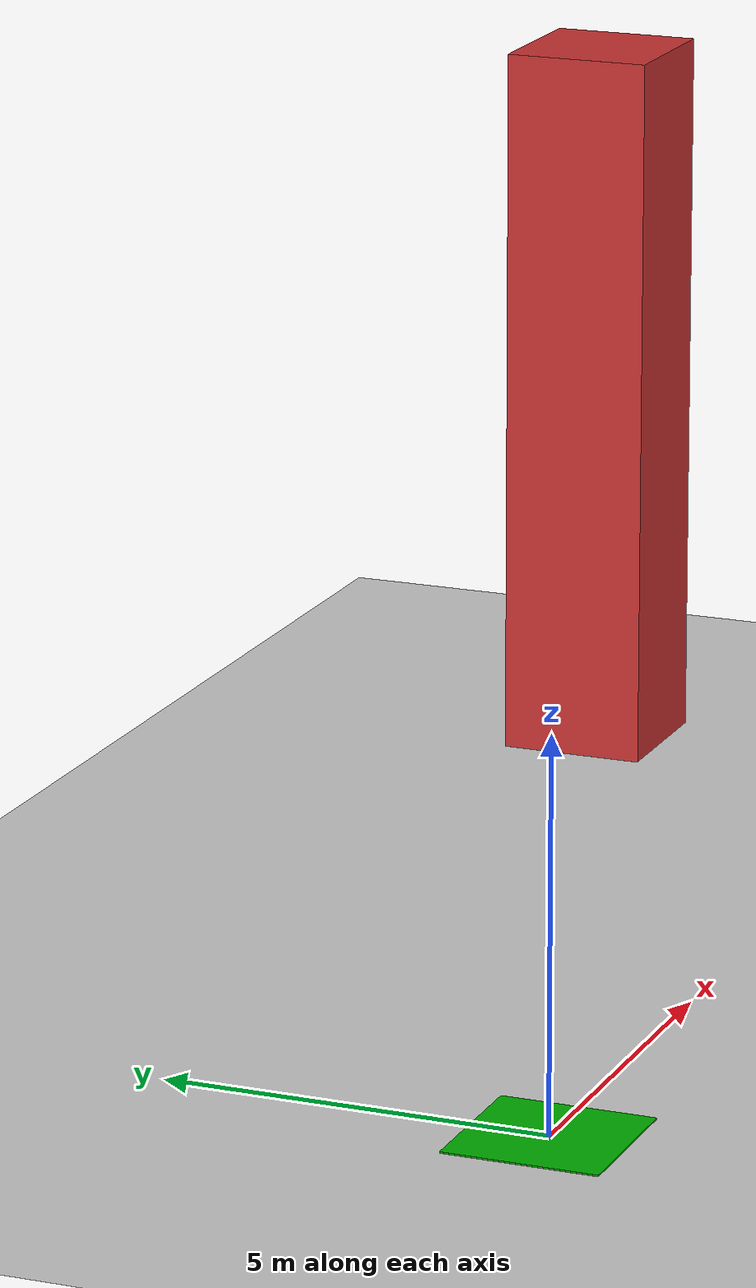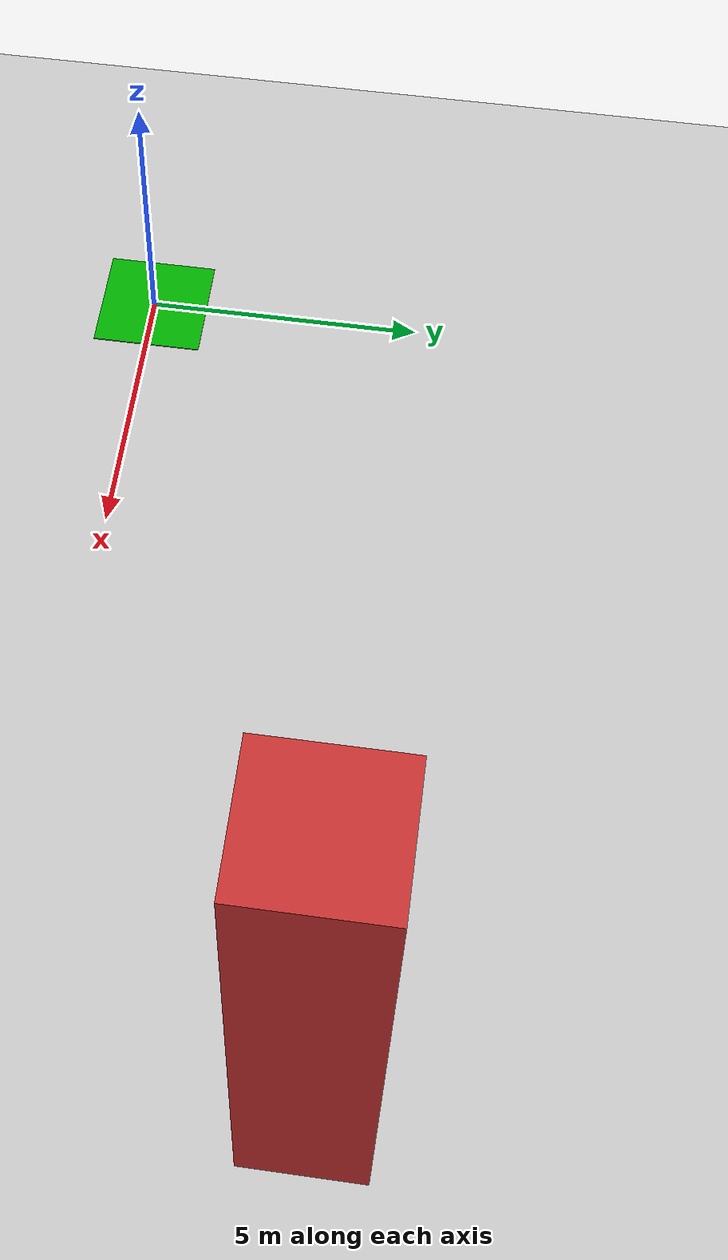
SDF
<?xml version="1.0" ?>
<sdf version="1.6">
  <world name="uav_world">
    <physics name="1ms" type="ignored">
      <max_step_size>0.001</max_step_size>
      <real_time_factor>1.0</real_time_factor>
    </physics>
    <plugin
      filename="ignition-gazebo-physics-system"
      name="ignition::gazebo::systems::Physics">
    </plugin>
    <plugin
      filename="ignition-gazebo-scene-broadcaster-system"
      name="ignition::gazebo::systems::SceneBroadcaster">
    </plugin>
    <plugin
      filename="ignition-gazebo-user-commands-system"
      name="ignition::gazebo::systems::UserCommands">
    </plugin>

    <light type="directional" name="sun">
      <cast_shadows>true</cast_shadows>
      <pose>0 0 10 0 0 0</pose>
      <diffuse>0.8 0.8 0.8 1</diffuse>
      <specular>0.2 0.2 0.2 1</specular>
      <attenuation>
        <range>1000</range>
        <constant>0.9</constant>
        <linear>0.01</linear>
        <quadratic>0.001</quadratic>
      </attenuation>
      <direction>-0.5 0.1 -0.9</direction>
    </light>

    <model name="ground_plane">
      <static>true</static>
      <link name="link">
        <collision name="collision">
          <geometry>
            <plane>
              <normal>0 0 1</normal>
              <size>100 100</size>
            </plane>
          </geometry>
        </collision>
        <visual name="visual">
          <geometry>
            <plane>
              <normal>0 0 1</normal>
              <size>100 100</size>
            </plane>
          </geometry>
          <material>
            <ambient>0.8 0.8 0.8 1</ambient>
            <diffuse>0.8 0.8 0.8 1</diffuse>
            <specular>0.8 0.8 0.8 1</specular>
          </material>
        </visual>
      </link>
    </model>

    <model name="landing_pad">
      <static>true</static>
      <pose>0 0 0.01 0 0 0</pose>
      <link name="link">
        <visual name="visual">
          <geometry>
            <box>
              <size>2 2 0.02</size>
            </box>
          </geometry>
          <material>
            <ambient>0 0.7 0 1</ambient>
            <diffuse>0 0.7 0 1</diffuse>
          </material>
        </visual>
      </link>
    </model>

    <model name="obstacle_tower">
      <static>true</static>
      <pose>15 5 5 0 0 0</pose>
      <link name="link">
        <collision name="collision">
          <geometry>
            <box>
              <size>2 2 10</size>
            </box>
          </geometry>
        </collision>
        <visual name="visual">
          <geometry>
            <box>
              <size>2 2 10</size>
            </box>
          </geometry>
          <material>
            <ambient>0.8 0.2 0.2 1</ambient>
            <diffuse>0.8 0.2 0.2 1</diffuse>
          </material>
        </visual>
      </link>
    </model>
  </world>
</sdf>
